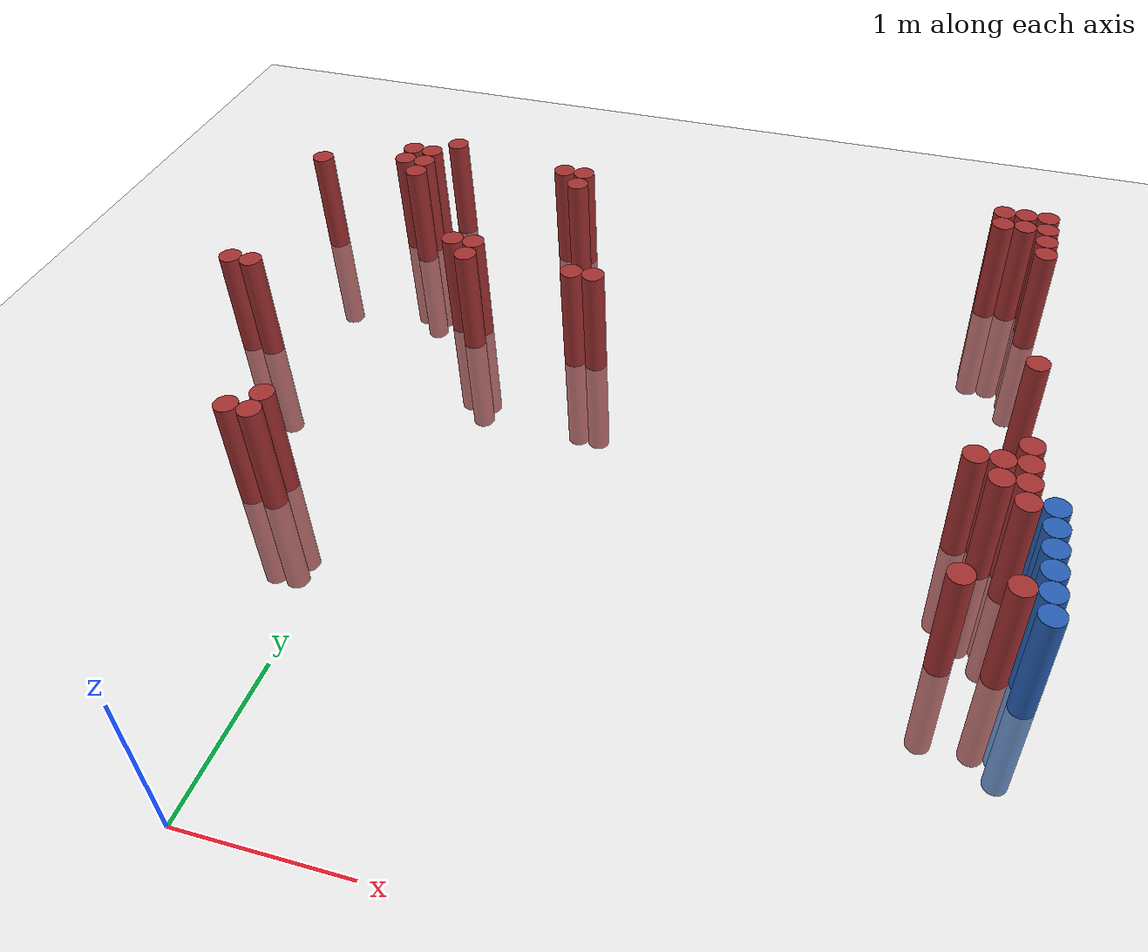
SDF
<sdf version="1.6">
 <world name="default">
  <model name="ground_plane">
   <static>1</static>
   <link name="link">
    <collision name="collision">
     <geometry><plane><normal>0 0 1</normal><size>100 100</size></plane></geometry>
     <surface><friction><ode><mu>100</mu><mu2>50</mu2></ode></friction></surface>
    </collision>
    <visual name="visual">
     <cast_shadows>0</cast_shadows>
     <geometry><plane><normal>0 0 1</normal><size>100 100</size></plane></geometry>
     <material>
      <script><uri>file://media/materials/scripts/gazebo.material</uri><name>Gazebo/Grey</name></script>
     </material>
    </visual>
   </link>
  </model>
  <model name="unit_cylinder_140">
   <static>1</static>
   <pose>3.925000 1.975000 0.000000 0.000000 0.000000 0.000000</pose>
   <link name="link">
    <inertial>
     <mass>1</mass>
     <inertia><ixx>0.145833</ixx><ixy>0</ixy><ixz>0</ixz><iyy>0.145833</iyy><iyz>0</iyz><izz>0.125</izz></inertia>
    </inertial>
    <collision name="collision">
     <geometry><cylinder><radius>0.075000</radius><length>1.5</length></cylinder></geometry>
    </collision>
    <visual name="visual">
     <geometry><cylinder><radius>0.075000</radius><length>1.5</length></cylinder></geometry>
     <material>
      <ambient>0.152000 0.379000 0.720000 1</ambient>
      <diffuse>0.152000 0.379000 0.720000 1</diffuse>
     </material>
     <material>
      <script><name>Gazebo/Grey</name><uri>file://media/materials/scripts/gazebo.material</uri></script>
     </material>
    </visual>
   </link>
  </model>
  <model name="unit_cylinder_142">
   <static>1</static>
   <pose>3.925000 2.125000 0.000000 0.000000 0.000000 0.000000</pose>
   <link name="link">
    <inertial>
     <mass>1</mass>
     <inertia><ixx>0.145833</ixx><ixy>0</ixy><ixz>0</ixz><iyy>0.145833</iyy><iyz>0</iyz><izz>0.125</izz></inertia>
    </inertial>
    <collision name="collision">
     <geometry><cylinder><radius>0.075000</radius><length>1.5</length></cylinder></geometry>
    </collision>
    <visual name="visual">
     <geometry><cylinder><radius>0.075000</radius><length>1.5</length></cylinder></geometry>
     <material>
      <ambient>0.152000 0.379000 0.720000 1</ambient>
      <diffuse>0.152000 0.379000 0.720000 1</diffuse>
     </material>
     <material>
      <script><name>Gazebo/Grey</name><uri>file://media/materials/scripts/gazebo.material</uri></script>
     </material>
    </visual>
   </link>
  </model>
  <model name="unit_cylinder_144">
   <static>1</static>
   <pose>3.925000 2.275000 0.000000 0.000000 0.000000 0.000000</pose>
   <link name="link">
    <inertial>
     <mass>1</mass>
     <inertia><ixx>0.145833</ixx><ixy>0</ixy><ixz>0</ixz><iyy>0.145833</iyy><iyz>0</iyz><izz>0.125</izz></inertia>
    </inertial>
    <collision name="collision">
     <geometry><cylinder><radius>0.075000</radius><length>1.5</length></cylinder></geometry>
    </collision>
    <visual name="visual">
     <geometry><cylinder><radius>0.075000</radius><length>1.5</length></cylinder></geometry>
     <material>
      <ambient>0.152000 0.379000 0.720000 1</ambient>
      <diffuse>0.152000 0.379000 0.720000 1</diffuse>
     </material>
     <material>
      <script><name>Gazebo/Grey</name><uri>file://media/materials/scripts/gazebo.material</uri></script>
     </material>
    </visual>
   </link>
  </model>
  <model name="unit_cylinder_146">
   <static>1</static>
   <pose>3.925000 2.425000 0.000000 0.000000 0.000000 0.000000</pose>
   <link name="link">
    <inertial>
     <mass>1</mass>
     <inertia><ixx>0.145833</ixx><ixy>0</ixy><ixz>0</ixz><iyy>0.145833</iyy><iyz>0</iyz><izz>0.125</izz></inertia>
    </inertial>
    <collision name="collision">
     <geometry><cylinder><radius>0.075000</radius><length>1.5</length></cylinder></geometry>
    </collision>
    <visual name="visual">
     <geometry><cylinder><radius>0.075000</radius><length>1.5</length></cylinder></geometry>
     <material>
      <ambient>0.152000 0.379000 0.720000 1</ambient>
      <diffuse>0.152000 0.379000 0.720000 1</diffuse>
     </material>
     <material>
      <script><name>Gazebo/Grey</name><uri>file://media/materials/scripts/gazebo.material</uri></script>
     </material>
    </visual>
   </link>
  </model>
  <model name="unit_cylinder_148">
   <static>1</static>
   <pose>3.925000 2.575000 0.000000 0.000000 0.000000 0.000000</pose>
   <link name="link">
    <inertial>
     <mass>1</mass>
     <inertia><ixx>0.145833</ixx><ixy>0</ixy><ixz>0</ixz><iyy>0.145833</iyy><iyz>0</iyz><izz>0.125</izz></inertia>
    </inertial>
    <collision name="collision">
     <geometry><cylinder><radius>0.075000</radius><length>1.5</length></cylinder></geometry>
    </collision>
    <visual name="visual">
     <geometry><cylinder><radius>0.075000</radius><length>1.5</length></cylinder></geometry>
     <material>
      <ambient>0.152000 0.379000 0.720000 1</ambient>
      <diffuse>0.152000 0.379000 0.720000 1</diffuse>
     </material>
     <material>
      <script><name>Gazebo/Grey</name><uri>file://media/materials/scripts/gazebo.material</uri></script>
     </material>
    </visual>
   </link>
  </model>
  <model name="unit_cylinder_293">
   <static>1</static>
   <pose>-1.475000 3.475000 0.000000 0.000000 0.000000 0.000000</pose>
   <link name="link">
    <inertial>
     <mass>1</mass>
     <inertia><ixx>0.145833</ixx><ixy>0</ixy><ixz>0</ixz><iyy>0.145833</iyy><iyz>0</iyz><izz>0.125</izz></inertia>
    </inertial>
    <collision name="collision">
     <geometry><cylinder><radius>0.075000</radius><length>1.5</length></cylinder></geometry>
    </collision>
    <visual name="visual">
     <geometry><cylinder><radius>0.075000</radius><length>1.5</length></cylinder></geometry>
     <material>
      <ambient>0.648000 0.192000 0.192000 1</ambient>
      <diffuse>0.648000 0.192000 0.192000 1</diffuse>
     </material>
     <material>
      <script><name>Gazebo/Grey</name><uri>file://media/materials/scripts/gazebo.material</uri></script>
     </material>
    </visual>
   </link>
  </model>
  <model name="unit_cylinder_294">
   <static>1</static>
   <pose>-1.475000 4.825000 0.000000 0.000000 0.000000 0.000000</pose>
   <link name="link">
    <inertial>
     <mass>1</mass>
     <inertia><ixx>0.145833</ixx><ixy>0</ixy><ixz>0</ixz><iyy>0.145833</iyy><iyz>0</iyz><izz>0.125</izz></inertia>
    </inertial>
    <collision name="collision">
     <geometry><cylinder><radius>0.075000</radius><length>1.5</length></cylinder></geometry>
    </collision>
    <visual name="visual">
     <geometry><cylinder><radius>0.075000</radius><length>1.5</length></cylinder></geometry>
     <material>
      <ambient>0.648000 0.192000 0.192000 1</ambient>
      <diffuse>0.648000 0.192000 0.192000 1</diffuse>
     </material>
     <material>
      <script><name>Gazebo/Grey</name><uri>file://media/materials/scripts/gazebo.material</uri></script>
     </material>
    </visual>
   </link>
  </model>
  <model name="unit_cylinder_295">
   <static>1</static>
   <pose>-1.325000 3.475000 0.000000 0.000000 0.000000 0.000000</pose>
   <link name="link">
    <inertial>
     <mass>1</mass>
     <inertia><ixx>0.145833</ixx><ixy>0</ixy><ixz>0</ixz><iyy>0.145833</iyy><iyz>0</iyz><izz>0.125</izz></inertia>
    </inertial>
    <collision name="collision">
     <geometry><cylinder><radius>0.075000</radius><length>1.5</length></cylinder></geometry>
    </collision>
    <visual name="visual">
     <geometry><cylinder><radius>0.075000</radius><length>1.5</length></cylinder></geometry>
     <material>
      <ambient>0.648000 0.192000 0.192000 1</ambient>
      <diffuse>0.648000 0.192000 0.192000 1</diffuse>
     </material>
     <material>
      <script><name>Gazebo/Grey</name><uri>file://media/materials/scripts/gazebo.material</uri></script>
     </material>
    </visual>
   </link>
  </model>
  <model name="unit_cylinder_307">
   <static>1</static>
   <pose>-0.875000 4.975000 0.000000 0.000000 0.000000 0.000000</pose>
   <link name="link">
    <inertial>
     <mass>1</mass>
     <inertia><ixx>0.145833</ixx><ixy>0</ixy><ixz>0</ixz><iyy>0.145833</iyy><iyz>0</iyz><izz>0.125</izz></inertia>
    </inertial>
    <collision name="collision">
     <geometry><cylinder><radius>0.075000</radius><length>1.5</length></cylinder></geometry>
    </collision>
    <visual name="visual">
     <geometry><cylinder><radius>0.075000</radius><length>1.5</length></cylinder></geometry>
     <material>
      <ambient>0.648000 0.192000 0.192000 1</ambient>
      <diffuse>0.648000 0.192000 0.192000 1</diffuse>
     </material>
     <material>
      <script><name>Gazebo/Grey</name><uri>file://media/materials/scripts/gazebo.material</uri></script>
     </material>
    </visual>
   </link>
  </model>
  <model name="unit_cylinder_308">
   <static>1</static>
   <pose>-0.875000 5.125000 0.000000 0.000000 0.000000 0.000000</pose>
   <link name="link">
    <inertial>
     <mass>1</mass>
     <inertia><ixx>0.145833</ixx><ixy>0</ixy><ixz>0</ixz><iyy>0.145833</iyy><iyz>0</iyz><izz>0.125</izz></inertia>
    </inertial>
    <collision name="collision">
     <geometry><cylinder><radius>0.075000</radius><length>1.5</length></cylinder></geometry>
    </collision>
    <visual name="visual">
     <geometry><cylinder><radius>0.075000</radius><length>1.5</length></cylinder></geometry>
     <material>
      <ambient>0.648000 0.192000 0.192000 1</ambient>
      <diffuse>0.648000 0.192000 0.192000 1</diffuse>
     </material>
     <material>
      <script><name>Gazebo/Grey</name><uri>file://media/materials/scripts/gazebo.material</uri></script>
     </material>
    </visual>
   </link>
  </model>
  <model name="unit_cylinder_310">
   <static>1</static>
   <pose>-0.725000 2.125000 0.000000 0.000000 0.000000 0.000000</pose>
   <link name="link">
    <inertial>
     <mass>1</mass>
     <inertia><ixx>0.145833</ixx><ixy>0</ixy><ixz>0</ixz><iyy>0.145833</iyy><iyz>0</iyz><izz>0.125</izz></inertia>
    </inertial>
    <collision name="collision">
     <geometry><cylinder><radius>0.075000</radius><length>1.5</length></cylinder></geometry>
    </collision>
    <visual name="visual">
     <geometry><cylinder><radius>0.075000</radius><length>1.5</length></cylinder></geometry>
     <material>
      <ambient>0.648000 0.192000 0.192000 1</ambient>
      <diffuse>0.648000 0.192000 0.192000 1</diffuse>
     </material>
     <material>
      <script><name>Gazebo/Grey</name><uri>file://media/materials/scripts/gazebo.material</uri></script>
     </material>
    </visual>
   </link>
  </model>
  <model name="unit_cylinder_311">
   <static>1</static>
   <pose>-0.725000 4.825000 0.000000 0.000000 0.000000 0.000000</pose>
   <link name="link">
    <inertial>
     <mass>1</mass>
     <inertia><ixx>0.145833</ixx><ixy>0</ixy><ixz>0</ixz><iyy>0.145833</iyy><iyz>0</iyz><izz>0.125</izz></inertia>
    </inertial>
    <collision name="collision">
     <geometry><cylinder><radius>0.075000</radius><length>1.5</length></cylinder></geometry>
    </collision>
    <visual name="visual">
     <geometry><cylinder><radius>0.075000</radius><length>1.5</length></cylinder></geometry>
     <material>
      <ambient>0.648000 0.192000 0.192000 1</ambient>
      <diffuse>0.648000 0.192000 0.192000 1</diffuse>
     </material>
     <material>
      <script><name>Gazebo/Grey</name><uri>file://media/materials/scripts/gazebo.material</uri></script>
     </material>
    </visual>
   </link>
  </model>
  <model name="unit_cylinder_312">
   <static>1</static>
   <pose>-0.725000 4.975000 0.000000 0.000000 0.000000 0.000000</pose>
   <link name="link">
    <inertial>
     <mass>1</mass>
     <inertia><ixx>0.145833</ixx><ixy>0</ixy><ixz>0</ixz><iyy>0.145833</iyy><iyz>0</iyz><izz>0.125</izz></inertia>
    </inertial>
    <collision name="collision">
     <geometry><cylinder><radius>0.075000</radius><length>1.5</length></cylinder></geometry>
    </collision>
    <visual name="visual">
     <geometry><cylinder><radius>0.075000</radius><length>1.5</length></cylinder></geometry>
     <material>
      <ambient>0.648000 0.192000 0.192000 1</ambient>
      <diffuse>0.648000 0.192000 0.192000 1</diffuse>
     </material>
     <material>
      <script><name>Gazebo/Grey</name><uri>file://media/materials/scripts/gazebo.material</uri></script>
     </material>
    </visual>
   </link>
  </model>
  <model name="unit_cylinder_313">
   <static>1</static>
   <pose>-0.725000 5.125000 0.000000 0.000000 0.000000 0.000000</pose>
   <link name="link">
    <inertial>
     <mass>1</mass>
     <inertia><ixx>0.145833</ixx><ixy>0</ixy><ixz>0</ixz><iyy>0.145833</iyy><iyz>0</iyz><izz>0.125</izz></inertia>
    </inertial>
    <collision name="collision">
     <geometry><cylinder><radius>0.075000</radius><length>1.5</length></cylinder></geometry>
    </collision>
    <visual name="visual">
     <geometry><cylinder><radius>0.075000</radius><length>1.5</length></cylinder></geometry>
     <material>
      <ambient>0.648000 0.192000 0.192000 1</ambient>
      <diffuse>0.648000 0.192000 0.192000 1</diffuse>
     </material>
     <material>
      <script><name>Gazebo/Grey</name><uri>file://media/materials/scripts/gazebo.material</uri></script>
     </material>
    </visual>
   </link>
  </model>
  <model name="unit_cylinder_314">
   <static>1</static>
   <pose>-0.575000 2.125000 0.000000 0.000000 0.000000 0.000000</pose>
   <link name="link">
    <inertial>
     <mass>1</mass>
     <inertia><ixx>0.145833</ixx><ixy>0</ixy><ixz>0</ixz><iyy>0.145833</iyy><iyz>0</iyz><izz>0.125</izz></inertia>
    </inertial>
    <collision name="collision">
     <geometry><cylinder><radius>0.075000</radius><length>1.5</length></cylinder></geometry>
    </collision>
    <visual name="visual">
     <geometry><cylinder><radius>0.075000</radius><length>1.5</length></cylinder></geometry>
     <material>
      <ambient>0.648000 0.192000 0.192000 1</ambient>
      <diffuse>0.648000 0.192000 0.192000 1</diffuse>
     </material>
     <material>
      <script><name>Gazebo/Grey</name><uri>file://media/materials/scripts/gazebo.material</uri></script>
     </material>
    </visual>
   </link>
  </model>
  <model name="unit_cylinder_315">
   <static>1</static>
   <pose>-0.575000 2.275000 0.000000 0.000000 0.000000 0.000000</pose>
   <link name="link">
    <inertial>
     <mass>1</mass>
     <inertia><ixx>0.145833</ixx><ixy>0</ixy><ixz>0</ixz><iyy>0.145833</iyy><iyz>0</iyz><izz>0.125</izz></inertia>
    </inertial>
    <collision name="collision">
     <geometry><cylinder><radius>0.075000</radius><length>1.5</length></cylinder></geometry>
    </collision>
    <visual name="visual">
     <geometry><cylinder><radius>0.075000</radius><length>1.5</length></cylinder></geometry>
     <material>
      <ambient>0.648000 0.192000 0.192000 1</ambient>
      <diffuse>0.648000 0.192000 0.192000 1</diffuse>
     </material>
     <material>
      <script><name>Gazebo/Grey</name><uri>file://media/materials/scripts/gazebo.material</uri></script>
     </material>
    </visual>
   </link>
  </model>
  <model name="unit_cylinder_316">
   <static>1</static>
   <pose>-0.575000 5.275000 0.000000 0.000000 0.000000 0.000000</pose>
   <link name="link">
    <inertial>
     <mass>1</mass>
     <inertia><ixx>0.145833</ixx><ixy>0</ixy><ixz>0</ixz><iyy>0.145833</iyy><iyz>0</iyz><izz>0.125</izz></inertia>
    </inertial>
    <collision name="collision">
     <geometry><cylinder><radius>0.075000</radius><length>1.5</length></cylinder></geometry>
    </collision>
    <visual name="visual">
     <geometry><cylinder><radius>0.075000</radius><length>1.5</length></cylinder></geometry>
     <material>
      <ambient>0.648000 0.192000 0.192000 1</ambient>
      <diffuse>0.648000 0.192000 0.192000 1</diffuse>
     </material>
     <material>
      <script><name>Gazebo/Grey</name><uri>file://media/materials/scripts/gazebo.material</uri></script>
     </material>
    </visual>
   </link>
  </model>
  <model name="unit_cylinder_320">
   <static>1</static>
   <pose>-0.125000 4.075000 0.000000 0.000000 0.000000 0.000000</pose>
   <link name="link">
    <inertial>
     <mass>1</mass>
     <inertia><ixx>0.145833</ixx><ixy>0</ixy><ixz>0</ixz><iyy>0.145833</iyy><iyz>0</iyz><izz>0.125</izz></inertia>
    </inertial>
    <collision name="collision">
     <geometry><cylinder><radius>0.075000</radius><length>1.5</length></cylinder></geometry>
    </collision>
    <visual name="visual">
     <geometry><cylinder><radius>0.075000</radius><length>1.5</length></cylinder></geometry>
     <material>
      <ambient>0.648000 0.192000 0.192000 1</ambient>
      <diffuse>0.648000 0.192000 0.192000 1</diffuse>
     </material>
     <material>
      <script><name>Gazebo/Grey</name><uri>file://media/materials/scripts/gazebo.material</uri></script>
     </material>
    </visual>
   </link>
  </model>
  <model name="unit_cylinder_322">
   <static>1</static>
   <pose>0.025000 3.925000 0.000000 0.000000 0.000000 0.000000</pose>
   <link name="link">
    <inertial>
     <mass>1</mass>
     <inertia><ixx>0.145833</ixx><ixy>0</ixy><ixz>0</ixz><iyy>0.145833</iyy><iyz>0</iyz><izz>0.125</izz></inertia>
    </inertial>
    <collision name="collision">
     <geometry><cylinder><radius>0.075000</radius><length>1.5</length></cylinder></geometry>
    </collision>
    <visual name="visual">
     <geometry><cylinder><radius>0.075000</radius><length>1.5</length></cylinder></geometry>
     <material>
      <ambient>0.648000 0.192000 0.192000 1</ambient>
      <diffuse>0.648000 0.192000 0.192000 1</diffuse>
     </material>
     <material>
      <script><name>Gazebo/Grey</name><uri>file://media/materials/scripts/gazebo.material</uri></script>
     </material>
    </visual>
   </link>
  </model>
  <model name="unit_cylinder_323">
   <static>1</static>
   <pose>0.025000 4.075000 0.000000 0.000000 0.000000 0.000000</pose>
   <link name="link">
    <inertial>
     <mass>1</mass>
     <inertia><ixx>0.145833</ixx><ixy>0</ixy><ixz>0</ixz><iyy>0.145833</iyy><iyz>0</iyz><izz>0.125</izz></inertia>
    </inertial>
    <collision name="collision">
     <geometry><cylinder><radius>0.075000</radius><length>1.5</length></cylinder></geometry>
    </collision>
    <visual name="visual">
     <geometry><cylinder><radius>0.075000</radius><length>1.5</length></cylinder></geometry>
     <material>
      <ambient>0.648000 0.192000 0.192000 1</ambient>
      <diffuse>0.648000 0.192000 0.192000 1</diffuse>
     </material>
     <material>
      <script><name>Gazebo/Grey</name><uri>file://media/materials/scripts/gazebo.material</uri></script>
     </material>
    </visual>
   </link>
  </model>
  <model name="unit_cylinder_326">
   <static>1</static>
   <pose>0.325000 5.125000 0.000000 0.000000 0.000000 0.000000</pose>
   <link name="link">
    <inertial>
     <mass>1</mass>
     <inertia><ixx>0.145833</ixx><ixy>0</ixy><ixz>0</ixz><iyy>0.145833</iyy><iyz>0</iyz><izz>0.125</izz></inertia>
    </inertial>
    <collision name="collision">
     <geometry><cylinder><radius>0.075000</radius><length>1.5</length></cylinder></geometry>
    </collision>
    <visual name="visual">
     <geometry><cylinder><radius>0.075000</radius><length>1.5</length></cylinder></geometry>
     <material>
      <ambient>0.648000 0.192000 0.192000 1</ambient>
      <diffuse>0.648000 0.192000 0.192000 1</diffuse>
     </material>
     <material>
      <script><name>Gazebo/Grey</name><uri>file://media/materials/scripts/gazebo.material</uri></script>
     </material>
    </visual>
   </link>
  </model>
  <model name="unit_cylinder_327">
   <static>1</static>
   <pose>0.475000 4.975000 0.000000 0.000000 0.000000 0.000000</pose>
   <link name="link">
    <inertial>
     <mass>1</mass>
     <inertia><ixx>0.145833</ixx><ixy>0</ixy><ixz>0</ixz><iyy>0.145833</iyy><iyz>0</iyz><izz>0.125</izz></inertia>
    </inertial>
    <collision name="collision">
     <geometry><cylinder><radius>0.075000</radius><length>1.5</length></cylinder></geometry>
    </collision>
    <visual name="visual">
     <geometry><cylinder><radius>0.075000</radius><length>1.5</length></cylinder></geometry>
     <material>
      <ambient>0.648000 0.192000 0.192000 1</ambient>
      <diffuse>0.648000 0.192000 0.192000 1</diffuse>
     </material>
     <material>
      <script><name>Gazebo/Grey</name><uri>file://media/materials/scripts/gazebo.material</uri></script>
     </material>
    </visual>
   </link>
  </model>
  <model name="unit_cylinder_328">
   <static>1</static>
   <pose>0.475000 5.125000 0.000000 0.000000 0.000000 0.000000</pose>
   <link name="link">
    <inertial>
     <mass>1</mass>
     <inertia><ixx>0.145833</ixx><ixy>0</ixy><ixz>0</ixz><iyy>0.145833</iyy><iyz>0</iyz><izz>0.125</izz></inertia>
    </inertial>
    <collision name="collision">
     <geometry><cylinder><radius>0.075000</radius><length>1.5</length></cylinder></geometry>
    </collision>
    <visual name="visual">
     <geometry><cylinder><radius>0.075000</radius><length>1.5</length></cylinder></geometry>
     <material>
      <ambient>0.648000 0.192000 0.192000 1</ambient>
      <diffuse>0.648000 0.192000 0.192000 1</diffuse>
     </material>
     <material>
      <script><name>Gazebo/Grey</name><uri>file://media/materials/scripts/gazebo.material</uri></script>
     </material>
    </visual>
   </link>
  </model>
  <model name="unit_cylinder_332">
   <static>1</static>
   <pose>0.775000 3.925000 0.000000 0.000000 0.000000 0.000000</pose>
   <link name="link">
    <inertial>
     <mass>1</mass>
     <inertia><ixx>0.145833</ixx><ixy>0</ixy><ixz>0</ixz><iyy>0.145833</iyy><iyz>0</iyz><izz>0.125</izz></inertia>
    </inertial>
    <collision name="collision">
     <geometry><cylinder><radius>0.075000</radius><length>1.5</length></cylinder></geometry>
    </collision>
    <visual name="visual">
     <geometry><cylinder><radius>0.075000</radius><length>1.5</length></cylinder></geometry>
     <material>
      <ambient>0.648000 0.192000 0.192000 1</ambient>
      <diffuse>0.648000 0.192000 0.192000 1</diffuse>
     </material>
     <material>
      <script><name>Gazebo/Grey</name><uri>file://media/materials/scripts/gazebo.material</uri></script>
     </material>
    </visual>
   </link>
  </model>
  <model name="unit_cylinder_337">
   <static>1</static>
   <pose>0.925000 3.925000 0.000000 0.000000 0.000000 0.000000</pose>
   <link name="link">
    <inertial>
     <mass>1</mass>
     <inertia><ixx>0.145833</ixx><ixy>0</ixy><ixz>0</ixz><iyy>0.145833</iyy><iyz>0</iyz><izz>0.125</izz></inertia>
    </inertial>
    <collision name="collision">
     <geometry><cylinder><radius>0.075000</radius><length>1.5</length></cylinder></geometry>
    </collision>
    <visual name="visual">
     <geometry><cylinder><radius>0.075000</radius><length>1.5</length></cylinder></geometry>
     <material>
      <ambient>0.648000 0.192000 0.192000 1</ambient>
      <diffuse>0.648000 0.192000 0.192000 1</diffuse>
     </material>
     <material>
      <script><name>Gazebo/Grey</name><uri>file://media/materials/scripts/gazebo.material</uri></script>
     </material>
    </visual>
   </link>
  </model>
  <model name="unit_cylinder_351">
   <static>1</static>
   <pose>3.475000 1.975000 0.000000 0.000000 0.000000 0.000000</pose>
   <link name="link">
    <inertial>
     <mass>1</mass>
     <inertia><ixx>0.145833</ixx><ixy>0</ixy><ixz>0</ixz><iyy>0.145833</iyy><iyz>0</iyz><izz>0.125</izz></inertia>
    </inertial>
    <collision name="collision">
     <geometry><cylinder><radius>0.075000</radius><length>1.5</length></cylinder></geometry>
    </collision>
    <visual name="visual">
     <geometry><cylinder><radius>0.075000</radius><length>1.5</length></cylinder></geometry>
     <material>
      <ambient>0.648000 0.192000 0.192000 1</ambient>
      <diffuse>0.648000 0.192000 0.192000 1</diffuse>
     </material>
     <material>
      <script><name>Gazebo/Grey</name><uri>file://media/materials/scripts/gazebo.material</uri></script>
     </material>
    </visual>
   </link>
  </model>
  <model name="unit_cylinder_352">
   <static>1</static>
   <pose>3.475000 2.875000 0.000000 0.000000 0.000000 0.000000</pose>
   <link name="link">
    <inertial>
     <mass>1</mass>
     <inertia><ixx>0.145833</ixx><ixy>0</ixy><ixz>0</ixz><iyy>0.145833</iyy><iyz>0</iyz><izz>0.125</izz></inertia>
    </inertial>
    <collision name="collision">
     <geometry><cylinder><radius>0.075000</radius><length>1.5</length></cylinder></geometry>
    </collision>
    <visual name="visual">
     <geometry><cylinder><radius>0.075000</radius><length>1.5</length></cylinder></geometry>
     <material>
      <ambient>0.648000 0.192000 0.192000 1</ambient>
      <diffuse>0.648000 0.192000 0.192000 1</diffuse>
     </material>
     <material>
      <script><name>Gazebo/Grey</name><uri>file://media/materials/scripts/gazebo.material</uri></script>
     </material>
    </visual>
   </link>
  </model>
  <model name="unit_cylinder_353">
   <static>1</static>
   <pose>3.475000 5.275000 0.000000 0.000000 0.000000 0.000000</pose>
   <link name="link">
    <inertial>
     <mass>1</mass>
     <inertia><ixx>0.145833</ixx><ixy>0</ixy><ixz>0</ixz><iyy>0.145833</iyy><iyz>0</iyz><izz>0.125</izz></inertia>
    </inertial>
    <collision name="collision">
     <geometry><cylinder><radius>0.075000</radius><length>1.5</length></cylinder></geometry>
    </collision>
    <visual name="visual">
     <geometry><cylinder><radius>0.075000</radius><length>1.5</length></cylinder></geometry>
     <material>
      <ambient>0.648000 0.192000 0.192000 1</ambient>
      <diffuse>0.648000 0.192000 0.192000 1</diffuse>
     </material>
     <material>
      <script><name>Gazebo/Grey</name><uri>file://media/materials/scripts/gazebo.material</uri></script>
     </material>
    </visual>
   </link>
  </model>
  <model name="unit_cylinder_354">
   <static>1</static>
   <pose>3.475000 5.425000 0.000000 0.000000 0.000000 0.000000</pose>
   <link name="link">
    <inertial>
     <mass>1</mass>
     <inertia><ixx>0.145833</ixx><ixy>0</ixy><ixz>0</ixz><iyy>0.145833</iyy><iyz>0</iyz><izz>0.125</izz></inertia>
    </inertial>
    <collision name="collision">
     <geometry><cylinder><radius>0.075000</radius><length>1.5</length></cylinder></geometry>
    </collision>
    <visual name="visual">
     <geometry><cylinder><radius>0.075000</radius><length>1.5</length></cylinder></geometry>
     <material>
      <ambient>0.648000 0.192000 0.192000 1</ambient>
      <diffuse>0.648000 0.192000 0.192000 1</diffuse>
     </material>
     <material>
      <script><name>Gazebo/Grey</name><uri>file://media/materials/scripts/gazebo.material</uri></script>
     </material>
    </visual>
   </link>
  </model>
  <model name="unit_cylinder_359">
   <static>1</static>
   <pose>3.625000 2.725000 0.000000 0.000000 0.000000 0.000000</pose>
   <link name="link">
    <inertial>
     <mass>1</mass>
     <inertia><ixx>0.145833</ixx><ixy>0</ixy><ixz>0</ixz><iyy>0.145833</iyy><iyz>0</iyz><izz>0.125</izz></inertia>
    </inertial>
    <collision name="collision">
     <geometry><cylinder><radius>0.075000</radius><length>1.5</length></cylinder></geometry>
    </collision>
    <visual name="visual">
     <geometry><cylinder><radius>0.075000</radius><length>1.5</length></cylinder></geometry>
     <material>
      <ambient>0.648000 0.192000 0.192000 1</ambient>
      <diffuse>0.648000 0.192000 0.192000 1</diffuse>
     </material>
     <material>
      <script><name>Gazebo/Grey</name><uri>file://media/materials/scripts/gazebo.material</uri></script>
     </material>
    </visual>
   </link>
  </model>
  <model name="unit_cylinder_360">
   <static>1</static>
   <pose>3.625000 2.875000 0.000000 0.000000 0.000000 0.000000</pose>
   <link name="link">
    <inertial>
     <mass>1</mass>
     <inertia><ixx>0.145833</ixx><ixy>0</ixy><ixz>0</ixz><iyy>0.145833</iyy><iyz>0</iyz><izz>0.125</izz></inertia>
    </inertial>
    <collision name="collision">
     <geometry><cylinder><radius>0.075000</radius><length>1.5</length></cylinder></geometry>
    </collision>
    <visual name="visual">
     <geometry><cylinder><radius>0.075000</radius><length>1.5</length></cylinder></geometry>
     <material>
      <ambient>0.648000 0.192000 0.192000 1</ambient>
      <diffuse>0.648000 0.192000 0.192000 1</diffuse>
     </material>
     <material>
      <script><name>Gazebo/Grey</name><uri>file://media/materials/scripts/gazebo.material</uri></script>
     </material>
    </visual>
   </link>
  </model>
  <model name="unit_cylinder_361">
   <static>1</static>
   <pose>3.625000 5.275000 0.000000 0.000000 0.000000 0.000000</pose>
   <link name="link">
    <inertial>
     <mass>1</mass>
     <inertia><ixx>0.145833</ixx><ixy>0</ixy><ixz>0</ixz><iyy>0.145833</iyy><iyz>0</iyz><izz>0.125</izz></inertia>
    </inertial>
    <collision name="collision">
     <geometry><cylinder><radius>0.075000</radius><length>1.5</length></cylinder></geometry>
    </collision>
    <visual name="visual">
     <geometry><cylinder><radius>0.075000</radius><length>1.5</length></cylinder></geometry>
     <material>
      <ambient>0.648000 0.192000 0.192000 1</ambient>
      <diffuse>0.648000 0.192000 0.192000 1</diffuse>
     </material>
     <material>
      <script><name>Gazebo/Grey</name><uri>file://media/materials/scripts/gazebo.material</uri></script>
     </material>
    </visual>
   </link>
  </model>
  <model name="unit_cylinder_362">
   <static>1</static>
   <pose>3.625000 5.425000 0.000000 0.000000 0.000000 0.000000</pose>
   <link name="link">
    <inertial>
     <mass>1</mass>
     <inertia><ixx>0.145833</ixx><ixy>0</ixy><ixz>0</ixz><iyy>0.145833</iyy><iyz>0</iyz><izz>0.125</izz></inertia>
    </inertial>
    <collision name="collision">
     <geometry><cylinder><radius>0.075000</radius><length>1.5</length></cylinder></geometry>
    </collision>
    <visual name="visual">
     <geometry><cylinder><radius>0.075000</radius><length>1.5</length></cylinder></geometry>
     <material>
      <ambient>0.648000 0.192000 0.192000 1</ambient>
      <diffuse>0.648000 0.192000 0.192000 1</diffuse>
     </material>
     <material>
      <script><name>Gazebo/Grey</name><uri>file://media/materials/scripts/gazebo.material</uri></script>
     </material>
    </visual>
   </link>
  </model>
  <model name="unit_cylinder_379">
   <static>1</static>
   <pose>3.775000 1.975000 0.000000 0.000000 0.000000 0.000000</pose>
   <link name="link">
    <inertial>
     <mass>1</mass>
     <inertia><ixx>0.145833</ixx><ixy>0</ixy><ixz>0</ixz><iyy>0.145833</iyy><iyz>0</iyz><izz>0.125</izz></inertia>
    </inertial>
    <collision name="collision">
     <geometry><cylinder><radius>0.075000</radius><length>1.5</length></cylinder></geometry>
    </collision>
    <visual name="visual">
     <geometry><cylinder><radius>0.075000</radius><length>1.5</length></cylinder></geometry>
     <material>
      <ambient>0.648000 0.192000 0.192000 1</ambient>
      <diffuse>0.648000 0.192000 0.192000 1</diffuse>
     </material>
     <material>
      <script><name>Gazebo/Grey</name><uri>file://media/materials/scripts/gazebo.material</uri></script>
     </material>
    </visual>
   </link>
  </model>
  <model name="unit_cylinder_380">
   <static>1</static>
   <pose>3.775000 2.575000 0.000000 0.000000 0.000000 0.000000</pose>
   <link name="link">
    <inertial>
     <mass>1</mass>
     <inertia><ixx>0.145833</ixx><ixy>0</ixy><ixz>0</ixz><iyy>0.145833</iyy><iyz>0</iyz><izz>0.125</izz></inertia>
    </inertial>
    <collision name="collision">
     <geometry><cylinder><radius>0.075000</radius><length>1.5</length></cylinder></geometry>
    </collision>
    <visual name="visual">
     <geometry><cylinder><radius>0.075000</radius><length>1.5</length></cylinder></geometry>
     <material>
      <ambient>0.648000 0.192000 0.192000 1</ambient>
      <diffuse>0.648000 0.192000 0.192000 1</diffuse>
     </material>
     <material>
      <script><name>Gazebo/Grey</name><uri>file://media/materials/scripts/gazebo.material</uri></script>
     </material>
    </visual>
   </link>
  </model>
  <model name="unit_cylinder_381">
   <static>1</static>
   <pose>3.775000 2.725000 0.000000 0.000000 0.000000 0.000000</pose>
   <link name="link">
    <inertial>
     <mass>1</mass>
     <inertia><ixx>0.145833</ixx><ixy>0</ixy><ixz>0</ixz><iyy>0.145833</iyy><iyz>0</iyz><izz>0.125</izz></inertia>
    </inertial>
    <collision name="collision">
     <geometry><cylinder><radius>0.075000</radius><length>1.5</length></cylinder></geometry>
    </collision>
    <visual name="visual">
     <geometry><cylinder><radius>0.075000</radius><length>1.5</length></cylinder></geometry>
     <material>
      <ambient>0.648000 0.192000 0.192000 1</ambient>
      <diffuse>0.648000 0.192000 0.192000 1</diffuse>
     </material>
     <material>
      <script><name>Gazebo/Grey</name><uri>file://media/materials/scripts/gazebo.material</uri></script>
     </material>
    </visual>
   </link>
  </model>
  <model name="unit_cylinder_382">
   <static>1</static>
   <pose>3.775000 2.875000 0.000000 0.000000 0.000000 0.000000</pose>
   <link name="link">
    <inertial>
     <mass>1</mass>
     <inertia><ixx>0.145833</ixx><ixy>0</ixy><ixz>0</ixz><iyy>0.145833</iyy><iyz>0</iyz><izz>0.125</izz></inertia>
    </inertial>
    <collision name="collision">
     <geometry><cylinder><radius>0.075000</radius><length>1.5</length></cylinder></geometry>
    </collision>
    <visual name="visual">
     <geometry><cylinder><radius>0.075000</radius><length>1.5</length></cylinder></geometry>
     <material>
      <ambient>0.648000 0.192000 0.192000 1</ambient>
      <diffuse>0.648000 0.192000 0.192000 1</diffuse>
     </material>
     <material>
      <script><name>Gazebo/Grey</name><uri>file://media/materials/scripts/gazebo.material</uri></script>
     </material>
    </visual>
   </link>
  </model>
  <model name="unit_cylinder_383">
   <static>1</static>
   <pose>3.775000 3.025000 0.000000 0.000000 0.000000 0.000000</pose>
   <link name="link">
    <inertial>
     <mass>1</mass>
     <inertia><ixx>0.145833</ixx><ixy>0</ixy><ixz>0</ixz><iyy>0.145833</iyy><iyz>0</iyz><izz>0.125</izz></inertia>
    </inertial>
    <collision name="collision">
     <geometry><cylinder><radius>0.075000</radius><length>1.5</length></cylinder></geometry>
    </collision>
    <visual name="visual">
     <geometry><cylinder><radius>0.075000</radius><length>1.5</length></cylinder></geometry>
     <material>
      <ambient>0.648000 0.192000 0.192000 1</ambient>
      <diffuse>0.648000 0.192000 0.192000 1</diffuse>
     </material>
     <material>
      <script><name>Gazebo/Grey</name><uri>file://media/materials/scripts/gazebo.material</uri></script>
     </material>
    </visual>
   </link>
  </model>
  <model name="unit_cylinder_384">
   <static>1</static>
   <pose>3.775000 3.775000 0.000000 0.000000 0.000000 0.000000</pose>
   <link name="link">
    <inertial>
     <mass>1</mass>
     <inertia><ixx>0.145833</ixx><ixy>0</ixy><ixz>0</ixz><iyy>0.145833</iyy><iyz>0</iyz><izz>0.125</izz></inertia>
    </inertial>
    <collision name="collision">
     <geometry><cylinder><radius>0.075000</radius><length>1.5</length></cylinder></geometry>
    </collision>
    <visual name="visual">
     <geometry><cylinder><radius>0.075000</radius><length>1.5</length></cylinder></geometry>
     <material>
      <ambient>0.648000 0.192000 0.192000 1</ambient>
      <diffuse>0.648000 0.192000 0.192000 1</diffuse>
     </material>
     <material>
      <script><name>Gazebo/Grey</name><uri>file://media/materials/scripts/gazebo.material</uri></script>
     </material>
    </visual>
   </link>
  </model>
  <model name="unit_cylinder_385">
   <static>1</static>
   <pose>3.775000 4.975000 0.000000 0.000000 0.000000 0.000000</pose>
   <link name="link">
    <inertial>
     <mass>1</mass>
     <inertia><ixx>0.145833</ixx><ixy>0</ixy><ixz>0</ixz><iyy>0.145833</iyy><iyz>0</iyz><izz>0.125</izz></inertia>
    </inertial>
    <collision name="collision">
     <geometry><cylinder><radius>0.075000</radius><length>1.5</length></cylinder></geometry>
    </collision>
    <visual name="visual">
     <geometry><cylinder><radius>0.075000</radius><length>1.5</length></cylinder></geometry>
     <material>
      <ambient>0.648000 0.192000 0.192000 1</ambient>
      <diffuse>0.648000 0.192000 0.192000 1</diffuse>
     </material>
     <material>
      <script><name>Gazebo/Grey</name><uri>file://media/materials/scripts/gazebo.material</uri></script>
     </material>
    </visual>
   </link>
  </model>
  <model name="unit_cylinder_386">
   <static>1</static>
   <pose>3.775000 5.125000 0.000000 0.000000 0.000000 0.000000</pose>
   <link name="link">
    <inertial>
     <mass>1</mass>
     <inertia><ixx>0.145833</ixx><ixy>0</ixy><ixz>0</ixz><iyy>0.145833</iyy><iyz>0</iyz><izz>0.125</izz></inertia>
    </inertial>
    <collision name="collision">
     <geometry><cylinder><radius>0.075000</radius><length>1.5</length></cylinder></geometry>
    </collision>
    <visual name="visual">
     <geometry><cylinder><radius>0.075000</radius><length>1.5</length></cylinder></geometry>
     <material>
      <ambient>0.648000 0.192000 0.192000 1</ambient>
      <diffuse>0.648000 0.192000 0.192000 1</diffuse>
     </material>
     <material>
      <script><name>Gazebo/Grey</name><uri>file://media/materials/scripts/gazebo.material</uri></script>
     </material>
    </visual>
   </link>
  </model>
  <model name="unit_cylinder_387">
   <static>1</static>
   <pose>3.775000 5.275000 0.000000 0.000000 0.000000 0.000000</pose>
   <link name="link">
    <inertial>
     <mass>1</mass>
     <inertia><ixx>0.145833</ixx><ixy>0</ixy><ixz>0</ixz><iyy>0.145833</iyy><iyz>0</iyz><izz>0.125</izz></inertia>
    </inertial>
    <collision name="collision">
     <geometry><cylinder><radius>0.075000</radius><length>1.5</length></cylinder></geometry>
    </collision>
    <visual name="visual">
     <geometry><cylinder><radius>0.075000</radius><length>1.5</length></cylinder></geometry>
     <material>
      <ambient>0.648000 0.192000 0.192000 1</ambient>
      <diffuse>0.648000 0.192000 0.192000 1</diffuse>
     </material>
     <material>
      <script><name>Gazebo/Grey</name><uri>file://media/materials/scripts/gazebo.material</uri></script>
     </material>
    </visual>
   </link>
  </model>
  <model name="unit_cylinder_388">
   <static>1</static>
   <pose>3.775000 5.425000 0.000000 0.000000 0.000000 0.000000</pose>
   <link name="link">
    <inertial>
     <mass>1</mass>
     <inertia><ixx>0.145833</ixx><ixy>0</ixy><ixz>0</ixz><iyy>0.145833</iyy><iyz>0</iyz><izz>0.125</izz></inertia>
    </inertial>
    <collision name="collision">
     <geometry><cylinder><radius>0.075000</radius><length>1.5</length></cylinder></geometry>
    </collision>
    <visual name="visual">
     <geometry><cylinder><radius>0.075000</radius><length>1.5</length></cylinder></geometry>
     <material>
      <ambient>0.648000 0.192000 0.192000 1</ambient>
      <diffuse>0.648000 0.192000 0.192000 1</diffuse>
     </material>
     <material>
      <script><name>Gazebo/Grey</name><uri>file://media/materials/scripts/gazebo.material</uri></script>
     </material>
    </visual>
   </link>
  </model>
  <model name="unit_cylinder_414">
   <static>1</static>
   <pose>3.925000 1.825000 0.000000 0.000000 0.000000 0.000000</pose>
   <link name="link">
    <inertial>
     <mass>1</mass>
     <inertia><ixx>0.145833</ixx><ixy>0</ixy><ixz>0</ixz><iyy>0.145833</iyy><iyz>0</iyz><izz>0.125</izz></inertia>
    </inertial>
    <collision name="collision">
     <geometry><cylinder><radius>0.075000</radius><length>1.5</length></cylinder></geometry>
    </collision>
    <visual name="visual">
     <geometry><cylinder><radius>0.075000</radius><length>1.5</length></cylinder></geometry>
     <material>
      <ambient>0.152000 0.379000 0.720000 1</ambient>
      <diffuse>0.152000 0.379000 0.720000 1</diffuse>
     </material>
     <material>
      <script><name>Gazebo/Grey</name><uri>file://media/materials/scripts/gazebo.material</uri></script>
     </material>
    </visual>
   </link>
  </model>
  <model name="unit_cylinder_415">
   <static>1</static>
   <pose>3.925000 1.975000 0.000000 0.000000 0.000000 0.000000</pose>
   <link name="link">
    <inertial>
     <mass>1</mass>
     <inertia><ixx>0.145833</ixx><ixy>0</ixy><ixz>0</ixz><iyy>0.145833</iyy><iyz>0</iyz><izz>0.125</izz></inertia>
    </inertial>
    <collision name="collision">
     <geometry><cylinder><radius>0.075000</radius><length>1.5</length></cylinder></geometry>
    </collision>
    <visual name="visual">
     <geometry><cylinder><radius>0.075000</radius><length>1.5</length></cylinder></geometry>
     <material>
      <ambient>0.152000 0.379000 0.720000 1</ambient>
      <diffuse>0.152000 0.379000 0.720000 1</diffuse>
     </material>
     <material>
      <script><name>Gazebo/Grey</name><uri>file://media/materials/scripts/gazebo.material</uri></script>
     </material>
    </visual>
   </link>
  </model>
  <model name="unit_cylinder_416">
   <static>1</static>
   <pose>3.925000 2.125000 0.000000 0.000000 0.000000 0.000000</pose>
   <link name="link">
    <inertial>
     <mass>1</mass>
     <inertia><ixx>0.145833</ixx><ixy>0</ixy><ixz>0</ixz><iyy>0.145833</iyy><iyz>0</iyz><izz>0.125</izz></inertia>
    </inertial>
    <collision name="collision">
     <geometry><cylinder><radius>0.075000</radius><length>1.5</length></cylinder></geometry>
    </collision>
    <visual name="visual">
     <geometry><cylinder><radius>0.075000</radius><length>1.5</length></cylinder></geometry>
     <material>
      <ambient>0.152000 0.379000 0.720000 1</ambient>
      <diffuse>0.152000 0.379000 0.720000 1</diffuse>
     </material>
     <material>
      <script><name>Gazebo/Grey</name><uri>file://media/materials/scripts/gazebo.material</uri></script>
     </material>
    </visual>
   </link>
  </model>
  <model name="unit_cylinder_417">
   <static>1</static>
   <pose>3.925000 2.275000 0.000000 0.000000 0.000000 0.000000</pose>
   <link name="link">
    <inertial>
     <mass>1</mass>
     <inertia><ixx>0.145833</ixx><ixy>0</ixy><ixz>0</ixz><iyy>0.145833</iyy><iyz>0</iyz><izz>0.125</izz></inertia>
    </inertial>
    <collision name="collision">
     <geometry><cylinder><radius>0.075000</radius><length>1.5</length></cylinder></geometry>
    </collision>
    <visual name="visual">
     <geometry><cylinder><radius>0.075000</radius><length>1.5</length></cylinder></geometry>
     <material>
      <ambient>0.152000 0.379000 0.720000 1</ambient>
      <diffuse>0.152000 0.379000 0.720000 1</diffuse>
     </material>
     <material>
      <script><name>Gazebo/Grey</name><uri>file://media/materials/scripts/gazebo.material</uri></script>
     </material>
    </visual>
   </link>
  </model>
  <model name="unit_cylinder_418">
   <static>1</static>
   <pose>3.925000 2.425000 0.000000 0.000000 0.000000 0.000000</pose>
   <link name="link">
    <inertial>
     <mass>1</mass>
     <inertia><ixx>0.145833</ixx><ixy>0</ixy><ixz>0</ixz><iyy>0.145833</iyy><iyz>0</iyz><izz>0.125</izz></inertia>
    </inertial>
    <collision name="collision">
     <geometry><cylinder><radius>0.075000</radius><length>1.5</length></cylinder></geometry>
    </collision>
    <visual name="visual">
     <geometry><cylinder><radius>0.075000</radius><length>1.5</length></cylinder></geometry>
     <material>
      <ambient>0.152000 0.379000 0.720000 1</ambient>
      <diffuse>0.152000 0.379000 0.720000 1</diffuse>
     </material>
     <material>
      <script><name>Gazebo/Grey</name><uri>file://media/materials/scripts/gazebo.material</uri></script>
     </material>
    </visual>
   </link>
  </model>
 </world>
</sdf>
